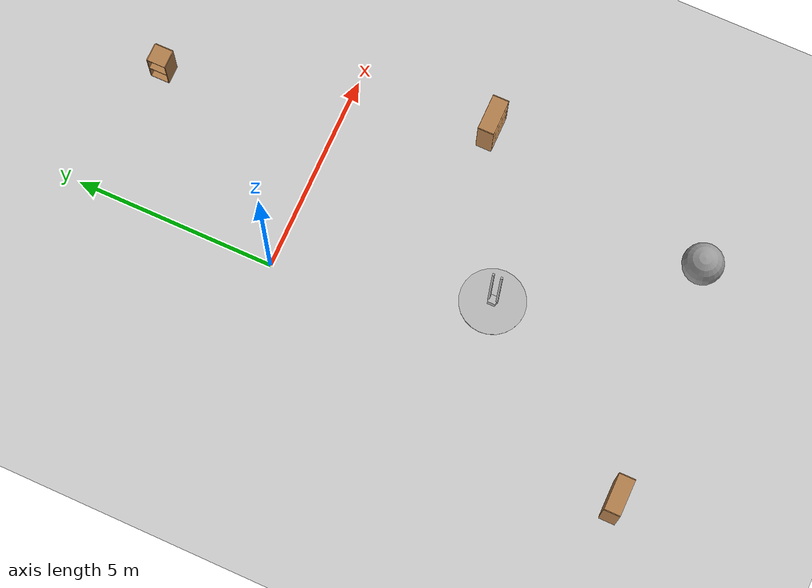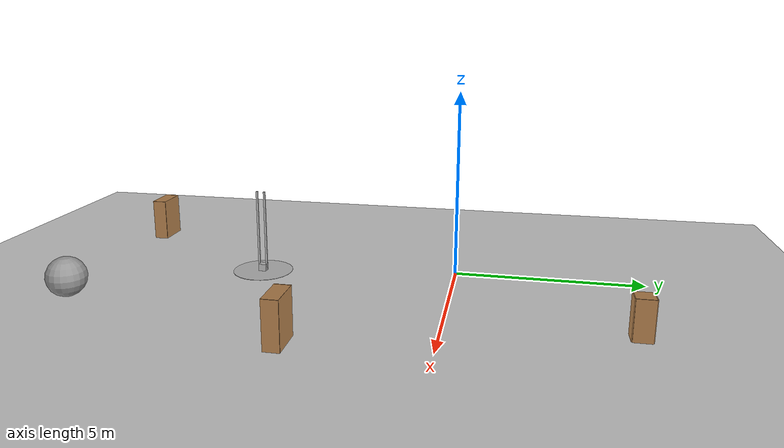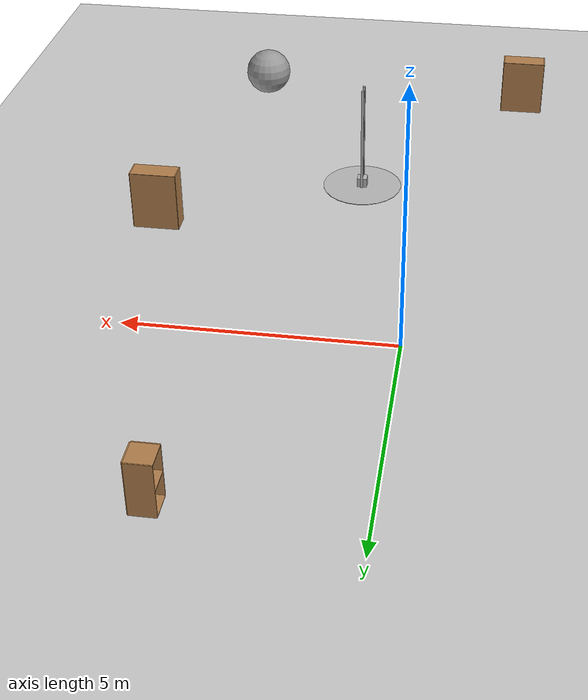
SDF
<sdf version="1.6">
 <world name="default">
  <light name="sun" type="directional">
   <pose>0 0 10 0 -0 0</pose>
   <diffuse>0.8 0.8 0.8 1</diffuse>
   <specular>0.2 0.2 0.2 1</specular>
   <attenuation>
    <range>1000</range>
    <constant>0.9</constant>
    <linear>0.01</linear>
    <quadratic>0.001</quadratic>
   </attenuation>
   <direction>-0.5 0.1 -0.9</direction>
  </light>
  <model name="ground_plane">
   <static>1</static>
   <link name="link">
    <collision name="collision">
     <geometry><plane><normal>0 0 1</normal><size>100 100</size></plane></geometry>
     <surface><friction><ode><mu>100</mu><mu2>50</mu2></ode></friction></surface>
    </collision>
    <visual name="visual">
     <cast_shadows>0</cast_shadows>
     <geometry><plane><normal>0 0 1</normal><size>100 100</size></plane></geometry>
     <material>
      <script><uri>file://media/materials/scripts/gazebo.material</uri><name>Gazebo/Grey</name></script>
     </material>
    </visual>
   </link>
  </model>
  <gravity>0 0 -9.8</gravity>
  <magnetic_field>6e-06 2.3e-05 -4.2e-05</magnetic_field>
  <atmosphere type="adiabatic"/>
  <physics name="default_physics" default="0" type="ode">
   <max_step_size>0.001</max_step_size>
   <real_time_factor>1</real_time_factor>
   <real_time_update_rate>1000</real_time_update_rate>
  </physics>
  <scene><ambient>0.4 0.4 0.4 1</ambient><background>0.7 0.7 0.7 1</background><shadows>1</shadows></scene>
  <spherical_coordinates>
   <surface_model>EARTH_WGS84</surface_model>
   <latitude_deg>0</latitude_deg>
   <longitude_deg>0</longitude_deg>
   <elevation>0</elevation>
   <heading_deg>0</heading_deg>
  </spherical_coordinates>
  <model name="bookshelf_0">
   <static>1</static>
   <link name="link">
    <inertial><mass>1</mass></inertial>
    <collision name="back">
     <pose>0 0.005 0.6 0 -0 0</pose>
     <geometry><box><size>0.9 0.01 1.2</size></box></geometry>
    </collision>
    <visual name="visual1">
     <pose>0 0.005 0.6 0 -0 0</pose>
     <geometry><box><size>0.9 0.01 1.2</size></box></geometry>
     <material>
      <script><uri>file://media/materials/scripts/gazebo.material</uri><name>Gazebo/Wood</name></script>
     </material>
    </visual>
    <collision name="left_side">
     <pose>0.45 -0.195 0.6 0 -0 0</pose>
     <geometry><box><size>0.02 0.4 1.2</size></box></geometry>
    </collision>
    <visual name="visual2">
     <pose>0.45 -0.195 0.6 0 -0 0</pose>
     <geometry><box><size>0.02 0.4 1.2</size></box></geometry>
     <material>
      <script><uri>file://media/materials/scripts/gazebo.material</uri><name>Gazebo/Wood</name></script>
     </material>
    </visual>
    <collision name="right_side">
     <pose>-0.45 -0.195 0.6 0 -0 0</pose>
     <geometry><box><size>0.02 0.4 1.2</size></box></geometry>
    </collision>
    <visual name="visual3">
     <pose>-0.45 -0.195 0.6 0 -0 0</pose>
     <geometry><box><size>0.02 0.4 1.2</size></box></geometry>
     <material>
      <script><uri>file://media/materials/scripts/gazebo.material</uri><name>Gazebo/Wood</name></script>
     </material>
    </visual>
    <collision name="bottom">
     <pose>0 -0.195 0.03 0 -0 0</pose>
     <geometry><box><size>0.88 0.4 0.06</size></box></geometry>
    </collision>
    <visual name="visual4">
     <pose>0 -0.195 0.03 0 -0 0</pose>
     <geometry><box><size>0.88 0.4 0.06</size></box></geometry>
     <material>
      <script><uri>file://media/materials/scripts/gazebo.material</uri><name>Gazebo/Wood</name></script>
     </material>
    </visual>
    <collision name="top">
     <pose>0 -0.195 1.19 0 -0 0</pose>
     <geometry><box><size>0.88 0.4 0.02</size></box></geometry>
    </collision>
    <visual name="visual5">
     <pose>0 -0.195 1.19 0 -0 0</pose>
     <geometry><box><size>0.88 0.4 0.02</size></box></geometry>
     <material>
      <script><uri>file://media/materials/scripts/gazebo.material</uri><name>Gazebo/Wood</name></script>
     </material>
    </visual>
    <collision name="low_shelf">
     <pose>0 -0.195 0.43 0 -0 0</pose>
     <geometry><box><size>0.88 0.4 0.02</size></box></geometry>
    </collision>
    <visual name="visual6">
     <pose>0 -0.195 0.43 0 -0 0</pose>
     <geometry><box><size>0.88 0.4 0.02</size></box></geometry>
     <material>
      <script><uri>file://media/materials/scripts/gazebo.material</uri><name>Gazebo/Wood</name></script>
     </material>
    </visual>
    <collision name="high_shelf">
     <pose>0 -0.195 0.8 0 -0 0</pose>
     <geometry><box><size>0.88 0.4 0.02</size></box></geometry>
    </collision>
    <visual name="visual7">
     <pose>0 -0.195 0.8 0 -0 0</pose>
     <geometry><box><size>0.88 0.4 0.02</size></box></geometry>
     <material>
      <script><uri>file://media/materials/scripts/gazebo.material</uri><name>Gazebo/Wood</name></script>
     </material>
    </visual>
   </link>
   <pose>-1.87589 -9.31607 0 0 -0 0</pose>
  </model>
  <model name="mass_on_rails">
   <link name="base">
    <inertial>
     <mass>100</mass>
     <inertia><ixx>1</ixx><ixy>0</ixy><ixz>0</ixz><iyy>1</iyy><iyz>0</iyz><izz>1</izz></inertia>
    </inertial>
    <visual name="vis_base">
     <pose>0 0 0.01 0 -0 0</pose>
     <geometry><cylinder><radius>0.8</radius><length>0.01</length></cylinder></geometry>
    </visual>
    <collision name="col_base">
     <pose>0 0 0.01 0 -0 0</pose>
     <geometry><cylinder><radius>0.8</radius><length>0.01</length></cylinder></geometry>
    </collision>
    <visual name="vis_rail1">
     <pose>0 0.1 1.1 0 -0 0</pose>
     <geometry><box><size>0.05 0.05 2.2</size></box></geometry>
    </visual>
    <collision name="col_rail1">
     <pose>0 0.1 1.1 0 -0 0</pose>
     <geometry><box><size>0.05 0.05 2.2</size></box></geometry>
    </collision>
    <visual name="vis_rail2">
     <pose>0 -0.1 1.1 0 -0 0</pose>
     <geometry><box><size>0.05 0.05 2.2</size></box></geometry>
    </visual>
    <collision name="col_rail2">
     <pose>0 -0.1 1.1 0 -0 0</pose>
     <geometry><box><size>0.05 0.05 2.2</size></box></geometry>
    </collision>
   </link>
   <link name="mass">
    <inertial>
     <mass>0.1</mass>
     <pose>0 0 0.1 0 -0 0</pose>
     <inertia><ixx>0.00067</ixx><ixy>0</ixy><ixz>0</ixz><iyy>0.00067</iyy><iyz>0</iyz><izz>0.00067</izz></inertia>
    </inertial>
    <visual name="visual">
     <pose>0 0 0.1 0 -0 0</pose>
     <geometry><box><size>0.2 0.2 0.2</size></box></geometry>
    </visual>
    <collision name="collision">
     <pose>0 0 0.1 0 -0 0</pose>
     <geometry><box><size>0.2 0.2 0.2</size></box></geometry>
    </collision>
   </link>
   <joint name="joint" type="prismatic">
    <parent>base</parent>
    <child>mass</child>
    <axis>
     <dynamics>
      <damping>0.01</damping>
      <friction>0.01</friction>
      <spring_reference>0</spring_reference>
      <spring_stiffness>0</spring_stiffness>
     </dynamics>
     <xyz>0 0 1</xyz>
     <limit><lower>0</lower><upper>2</upper></limit>
     <use_parent_model_frame>0</use_parent_model_frame>
    </axis>
   </joint>
   <pose>1.2933 -5.1084 0.1898 0 0 -7.8e-05</pose>
  </model>
  <model name="bookshelf_0_clone">
   <static>1</static>
   <link name="link">
    <inertial><mass>1</mass></inertial>
    <collision name="back">
     <pose>0 0.005 0.6 0 -0 0</pose>
     <geometry><box><size>0.9 0.01 1.2</size></box></geometry>
    </collision>
    <visual name="visual1">
     <pose>0 0.005 0.6 0 -0 0</pose>
     <geometry><box><size>0.9 0.01 1.2</size></box></geometry>
     <material>
      <script><uri>file://media/materials/scripts/gazebo.material</uri><name>Gazebo/Wood</name></script>
     </material>
    </visual>
    <collision name="left_side">
     <pose>0.45 -0.195 0.6 0 -0 0</pose>
     <geometry><box><size>0.02 0.4 1.2</size></box></geometry>
    </collision>
    <visual name="visual2">
     <pose>0.45 -0.195 0.6 0 -0 0</pose>
     <geometry><box><size>0.02 0.4 1.2</size></box></geometry>
     <material>
      <script><uri>file://media/materials/scripts/gazebo.material</uri><name>Gazebo/Wood</name></script>
     </material>
    </visual>
    <collision name="right_side">
     <pose>-0.45 -0.195 0.6 0 -0 0</pose>
     <geometry><box><size>0.02 0.4 1.2</size></box></geometry>
    </collision>
    <visual name="visual3">
     <pose>-0.45 -0.195 0.6 0 -0 0</pose>
     <geometry><box><size>0.02 0.4 1.2</size></box></geometry>
     <material>
      <script><uri>file://media/materials/scripts/gazebo.material</uri><name>Gazebo/Wood</name></script>
     </material>
    </visual>
    <collision name="bottom">
     <pose>0 -0.195 0.03 0 -0 0</pose>
     <geometry><box><size>0.88 0.4 0.06</size></box></geometry>
    </collision>
    <visual name="visual4">
     <pose>0 -0.195 0.03 0 -0 0</pose>
     <geometry><box><size>0.88 0.4 0.06</size></box></geometry>
     <material>
      <script><uri>file://media/materials/scripts/gazebo.material</uri><name>Gazebo/Wood</name></script>
     </material>
    </visual>
    <collision name="top">
     <pose>0 -0.195 1.19 0 -0 0</pose>
     <geometry><box><size>0.88 0.4 0.02</size></box></geometry>
    </collision>
    <visual name="visual5">
     <pose>0 -0.195 1.19 0 -0 0</pose>
     <geometry><box><size>0.88 0.4 0.02</size></box></geometry>
     <material>
      <script><uri>file://media/materials/scripts/gazebo.material</uri><name>Gazebo/Wood</name></script>
     </material>
    </visual>
    <collision name="low_shelf">
     <pose>0 -0.195 0.43 0 -0 0</pose>
     <geometry><box><size>0.88 0.4 0.02</size></box></geometry>
    </collision>
    <visual name="visual6">
     <pose>0 -0.195 0.43 0 -0 0</pose>
     <geometry><box><size>0.88 0.4 0.02</size></box></geometry>
     <material>
      <script><uri>file://media/materials/scripts/gazebo.material</uri><name>Gazebo/Wood</name></script>
     </material>
    </visual>
    <collision name="high_shelf">
     <pose>0 -0.195 0.8 0 -0 0</pose>
     <geometry><box><size>0.88 0.4 0.02</size></box></geometry>
    </collision>
    <visual name="visual7">
     <pose>0 -0.195 0.8 0 -0 0</pose>
     <geometry><box><size>0.88 0.4 0.02</size></box></geometry>
     <material>
      <script><uri>file://media/materials/scripts/gazebo.material</uri><name>Gazebo/Wood</name></script>
     </material>
    </visual>
   </link>
   <pose>5.17593 -3.19668 0 0 -0 0</pose>
  </model>
  <model name="unit_sphere">
   <pose>3.99269 -9.22108 0.6898 0 -0 0</pose>
   <link name="link">
    <inertial>
     <mass>1</mass>
     <inertia><ixx>0.1</ixx><ixy>0</ixy><ixz>0</ixz><iyy>0.1</iyy><iyz>0</iyz><izz>0.1</izz></inertia>
    </inertial>
    <collision name="collision"><geometry><sphere><radius>0.5</radius></sphere></geometry></collision>
    <visual name="visual">
     <geometry><sphere><radius>0.5</radius></sphere></geometry>
     <material>
      <script><name>Gazebo/Grey</name><uri>file://media/materials/scripts/gazebo.material</uri></script>
     </material>
    </visual>
   </link>
  </model>
  <model name="cabinet">
   <static>1</static>
   <link name="cabinet_bottom_plate">
    <inertial>
     <pose>0 0 -1 0 -0 0</pose>
     <inertia><ixx>2.05</ixx><ixy>0</ixy><ixz>0</ixz><iyy>2.05</iyy><iyz>0</iyz><izz>2.05</izz></inertia>
     <mass>25</mass>
    </inertial>
    <collision name="cabinet_bottom_plate_geom">
     <pose>0 0 0.01 0 -0 0</pose>
     <geometry><box><size>0.45 0.45 0.02</size></box></geometry>
    </collision>
    <visual name="cabinet_bottom_plate_geom_visual">
     <pose>0 0 0.01 0 -0 0</pose>
     <geometry><box><size>0.45 0.45 0.02</size></box></geometry>
     <material>
      <script><uri>file://media/materials/scripts/gazebo.material</uri><name>Gazebo/Wood</name></script>
     </material>
    </visual>
    <collision name="cabinet_bottom_plate_geom_cabinet_back_plate">
     <pose>0.235 0 0.51 0 -0 0</pose>
     <geometry><box><size>0.02 0.45 1.02</size></box></geometry>
    </collision>
    <visual name="cabinet_bottom_plate_geom_cabinet_back_plate_visual">
     <pose>0.235 0 0.51 0 -0 0</pose>
     <geometry><box><size>0.02 0.45 1.02</size></box></geometry>
     <material>
      <script><uri>file://media/materials/scripts/gazebo.material</uri><name>Gazebo/Wood</name></script>
     </material>
    </visual>
    <collision name="cabinet_bottom_plate_geom_cabinet_left_plate">
     <pose>0 0.235 0.51 0 -0 0</pose>
     <geometry><box><size>0.45 0.02 1.02</size></box></geometry>
    </collision>
    <visual name="cabinet_bottom_plate_geom_cabinet_left_plate_visual">
     <pose>0 0.235 0.51 0 -0 0</pose>
     <geometry><box><size>0.45 0.02 1.02</size></box></geometry>
     <material>
      <script><uri>file://media/materials/scripts/gazebo.material</uri><name>Gazebo/Wood</name></script>
     </material>
    </visual>
    <collision name="cabinet_bottom_plate_geom_cabinet_middle_plate">
     <pose>0 0 0.51 0 -0 0</pose>
     <geometry><box><size>0.45 0.45 0.02</size></box></geometry>
    </collision>
    <visual name="cabinet_bottom_plate_geom_cabinet_middle_plate_visual">
     <pose>0 0 0.51 0 -0 0</pose>
     <geometry><box><size>0.45 0.45 0.02</size></box></geometry>
     <material>
      <script><uri>file://media/materials/scripts/gazebo.material</uri><name>Gazebo/Wood</name></script>
     </material>
    </visual>
    <collision name="cabinet_bottom_plate_geom_cabinet_right_plate">
     <pose>0 -0.235 0.51 0 -0 0</pose>
     <geometry><box><size>0.45 0.02 1.02</size></box></geometry>
    </collision>
    <visual name="cabinet_bottom_plate_geom_cabinet_right_plate_visual">
     <pose>0 -0.235 0.51 0 -0 0</pose>
     <geometry><box><size>0.45 0.02 1.02</size></box></geometry>
     <material>
      <script><uri>file://media/materials/scripts/gazebo.material</uri><name>Gazebo/Wood</name></script>
     </material>
    </visual>
    <collision name="cabinet_bottom_plate_geom_cabinet_top_plate">
     <pose>0 0 1.01 0 -0 0</pose>
     <geometry><box><size>0.45 0.45 0.02</size></box></geometry>
    </collision>
    <visual name="cabinet_bottom_plate_geom_cabinet_top_plate_visual">
     <pose>0 0 1.01 0 -0 0</pose>
     <geometry><box><size>0.45 0.45 0.02</size></box></geometry>
     <material>
      <script><uri>file://media/materials/scripts/gazebo.material</uri><name>Gazebo/Wood</name></script>
     </material>
    </visual>
   </link>
   <pose>3.35236 4.40434 0 0 -0 0</pose>
  </model>
 </world>
</sdf>
